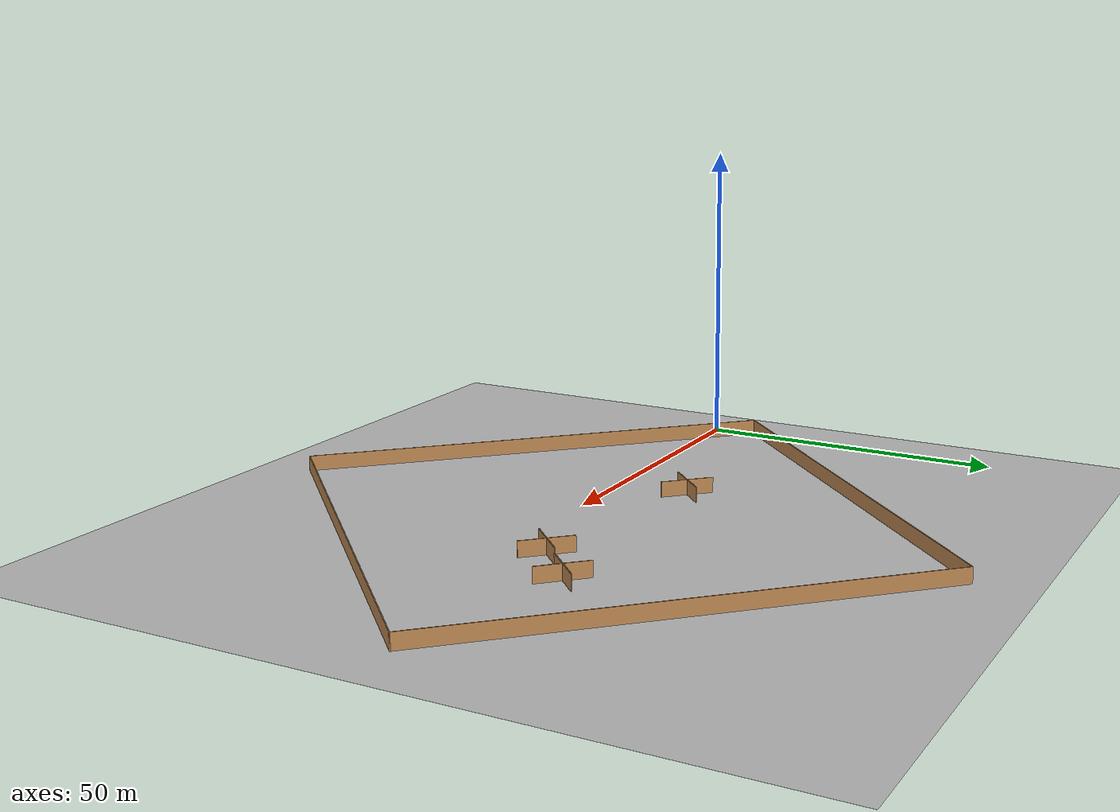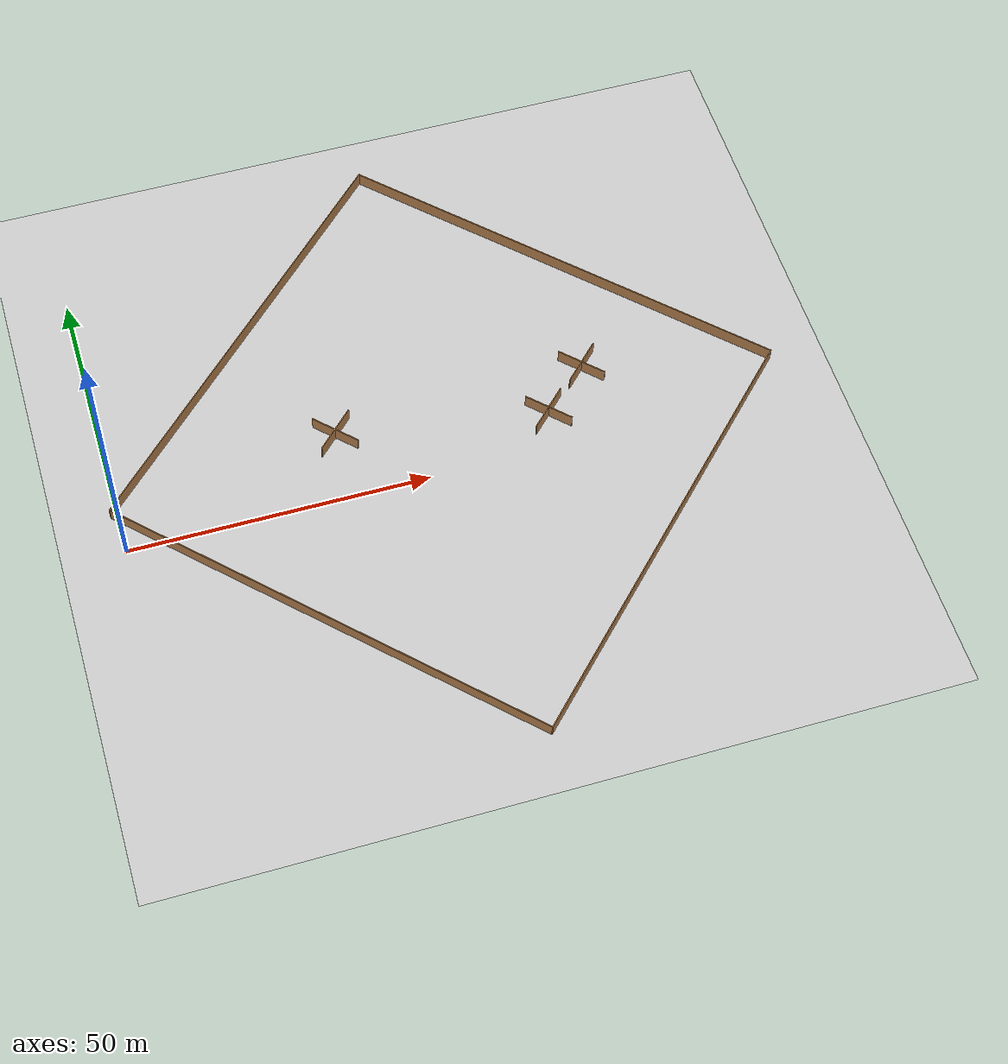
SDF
<sdf version="1.6">
 <world name="default">
  <model name="ground_plane">
   <static>1</static>
   <link name="link">
    <collision name="collision">
     <geometry><plane><normal>0 0 1</normal><size>100 100</size></plane></geometry>
     <surface><friction><ode><mu>100</mu><mu2>50</mu2></ode></friction></surface>
    </collision>
    <visual name="visual">
     <cast_shadows>0</cast_shadows>
     <geometry><plane><normal>0 0 1</normal><size>100 100</size></plane></geometry>
     <material>
      <script><uri>file://media/materials/scripts/gazebo.material</uri><name>Gazebo/Grey</name></script>
     </material>
    </visual>
   </link>
  </model>
  <model name="LoZ">
   <pose>54.904 6.8554 0 0 -0 0</pose>
   <link name="Wall_0">
    <collision name="Wall_0_Collision">
     <geometry><box><size>79.346 0.15 2.5</size></box></geometry>
     <pose>0 0 1.25 0 -0 0</pose>
    </collision>
    <visual name="Wall_0_Visual">
     <pose>0 0 1.25 0 -0 0</pose>
     <geometry><box><size>79.346 0.15 2.5</size></box></geometry>
     <material>
      <script><uri>file://media/materials/scripts/gazebo.material</uri><name>Gazebo/Wood</name></script>
      <ambient>1 1 1 1</ambient>
     </material>
    </visual>
    <pose>-28 -28 0 0 0 -0.785398</pose>
   </link>
   <link name="Wall_4">
    <collision name="Wall_4_Collision">
     <geometry><box><size>79.346 0.15 2.5</size></box></geometry>
     <pose>0 0 1.25 0 -0 0</pose>
    </collision>
    <visual name="Wall_4_Visual">
     <pose>0 0 1.25 0 -0 0</pose>
     <geometry><box><size>79.346 0.15 2.5</size></box></geometry>
     <material>
      <script><uri>file://media/materials/scripts/gazebo.material</uri><name>Gazebo/Wood</name></script>
      <ambient>1 1 1 1</ambient>
     </material>
    </visual>
    <pose>-28 28 0 0 -0 0.785398</pose>
   </link>
   <link name="Wall_6">
    <collision name="Wall_6_Collision">
     <geometry><box><size>79.346 0.15 2.5</size></box></geometry>
     <pose>0 0 1.25 0 -0 0</pose>
    </collision>
    <visual name="Wall_6_Visual">
     <pose>0 0 1.25 0 -0 0</pose>
     <geometry><box><size>79.346 0.15 2.5</size></box></geometry>
     <material>
      <script><uri>file://media/materials/scripts/gazebo.material</uri><name>Gazebo/Wood</name></script>
      <ambient>1 1 1 1</ambient>
     </material>
    </visual>
    <pose>28 28 0 0 -0 2.35619</pose>
   </link>
   <link name="Wall_8">
    <collision name="Wall_8_Collision">
     <geometry><box><size>79.346 0.15 2.5</size></box></geometry>
     <pose>0 0 1.25 0 -0 0</pose>
    </collision>
    <visual name="Wall_8_Visual">
     <pose>0 0 1.25 0 -0 0</pose>
     <geometry><box><size>79.346 0.15 2.5</size></box></geometry>
     <material>
      <script><uri>file://media/materials/scripts/gazebo.material</uri><name>Gazebo/Wood</name></script>
      <ambient>1 1 1 1</ambient>
     </material>
    </visual>
    <pose>28 -28 0 0 -0 0.785398</pose>
   </link>
   <static>1</static>
  </model>
  <model name="obs3_4">
   <pose>79.9247 13.4505 0 0 -0 0</pose>
   <link name="Wall_0">
    <collision name="Wall_0_Collision">
     <geometry><box><size>8.63528 0.15 2.5</size></box></geometry>
     <pose>0 0 1.25 0 -0 0</pose>
    </collision>
    <visual name="Wall_0_Visual">
     <pose>0 0 1.25 0 -0 0</pose>
     <geometry><box><size>8.63528 0.15 2.5</size></box></geometry>
     <material>
      <script><uri>file://media/materials/scripts/gazebo.material</uri><name>Gazebo/Wood</name></script>
      <ambient>1 1 1 1</ambient>
     </material>
    </visual>
    <pose>0 0 0 0 0 -0.785398</pose>
   </link>
   <link name="Wall_2">
    <collision name="Wall_2_Collision">
     <geometry><box><size>8.63528 0.15 2.5</size></box></geometry>
     <pose>0 0 1.25 0 -0 0</pose>
    </collision>
    <visual name="Wall_2_Visual">
     <pose>0 0 1.25 0 -0 0</pose>
     <geometry><box><size>8.63528 0.15 2.5</size></box></geometry>
     <material>
      <script><uri>file://media/materials/scripts/gazebo.material</uri><name>Gazebo/Wood</name></script>
      <ambient>1 1 1 1</ambient>
     </material>
    </visual>
    <pose>0 0 0 0 0 -2.35619</pose>
   </link>
   <static>1</static>
  </model>
  <model name="obs3_11">
   <pose>37.2077 11.805 0 0 -0 0</pose>
   <link name="Wall_0">
    <collision name="Wall_0_Collision">
     <geometry><box><size>8.63528 0.15 2.5</size></box></geometry>
     <pose>0 0 1.25 0 -0 0</pose>
    </collision>
    <visual name="Wall_0_Visual">
     <pose>0 0 1.25 0 -0 0</pose>
     <geometry><box><size>8.63528 0.15 2.5</size></box></geometry>
     <material>
      <script><uri>file://media/materials/scripts/gazebo.material</uri><name>Gazebo/Wood</name></script>
      <ambient>1 1 1 1</ambient>
     </material>
    </visual>
    <pose>0 0 0 0 0 -0.785398</pose>
   </link>
   <link name="Wall_2">
    <collision name="Wall_2_Collision">
     <geometry><box><size>8.63528 0.15 2.5</size></box></geometry>
     <pose>0 0 1.25 0 -0 0</pose>
    </collision>
    <visual name="Wall_2_Visual">
     <pose>0 0 1.25 0 -0 0</pose>
     <geometry><box><size>8.63528 0.15 2.5</size></box></geometry>
     <material>
      <script><uri>file://media/materials/scripts/gazebo.material</uri><name>Gazebo/Wood</name></script>
      <ambient>1 1 1 1</ambient>
     </material>
    </visual>
    <pose>0 0 0 0 0 -2.35619</pose>
   </link>
   <static>1</static>
  </model>
  <model name="obs3_15">
   <pose>71.9483 6.30396 0 0 -0 0</pose>
   <link name="Wall_0">
    <collision name="Wall_0_Collision">
     <geometry><box><size>8.63528 0.15 2.5</size></box></geometry>
     <pose>0 0 1.25 0 -0 0</pose>
    </collision>
    <visual name="Wall_0_Visual">
     <pose>0 0 1.25 0 -0 0</pose>
     <geometry><box><size>8.63528 0.15 2.5</size></box></geometry>
     <material>
      <script><uri>file://media/materials/scripts/gazebo.material</uri><name>Gazebo/Wood</name></script>
      <ambient>1 1 1 1</ambient>
     </material>
    </visual>
    <pose>0 0 0 0 0 -0.785398</pose>
   </link>
   <link name="Wall_2">
    <collision name="Wall_2_Collision">
     <geometry><box><size>8.63528 0.15 2.5</size></box></geometry>
     <pose>0 0 1.25 0 -0 0</pose>
    </collision>
    <visual name="Wall_2_Visual">
     <pose>0 0 1.25 0 -0 0</pose>
     <geometry><box><size>8.63528 0.15 2.5</size></box></geometry>
     <material>
      <script><uri>file://media/materials/scripts/gazebo.material</uri><name>Gazebo/Wood</name></script>
      <ambient>1 1 1 1</ambient>
     </material>
    </visual>
    <pose>0 0 0 0 0 -2.35619</pose>
   </link>
   <static>1</static>
  </model>
 </world>
</sdf>
